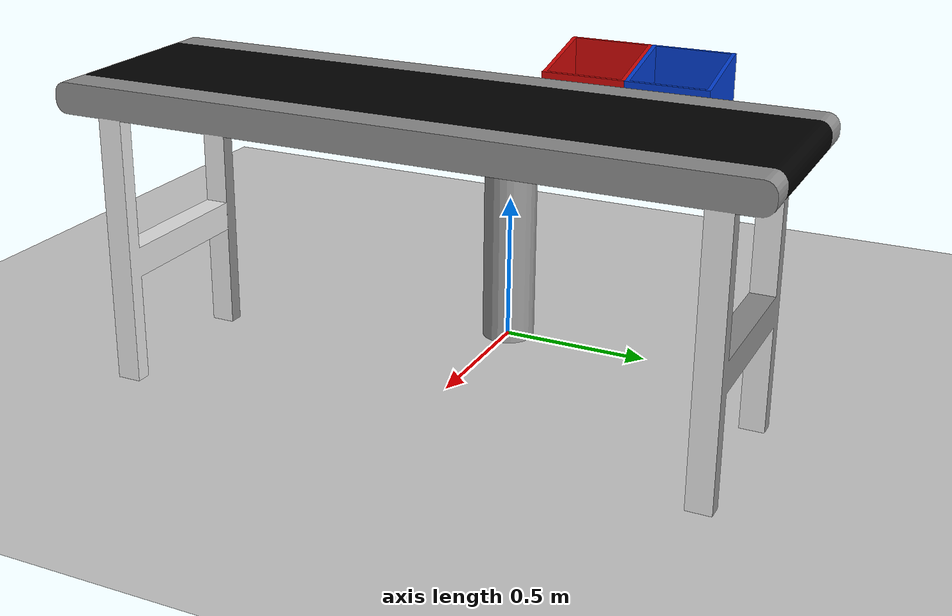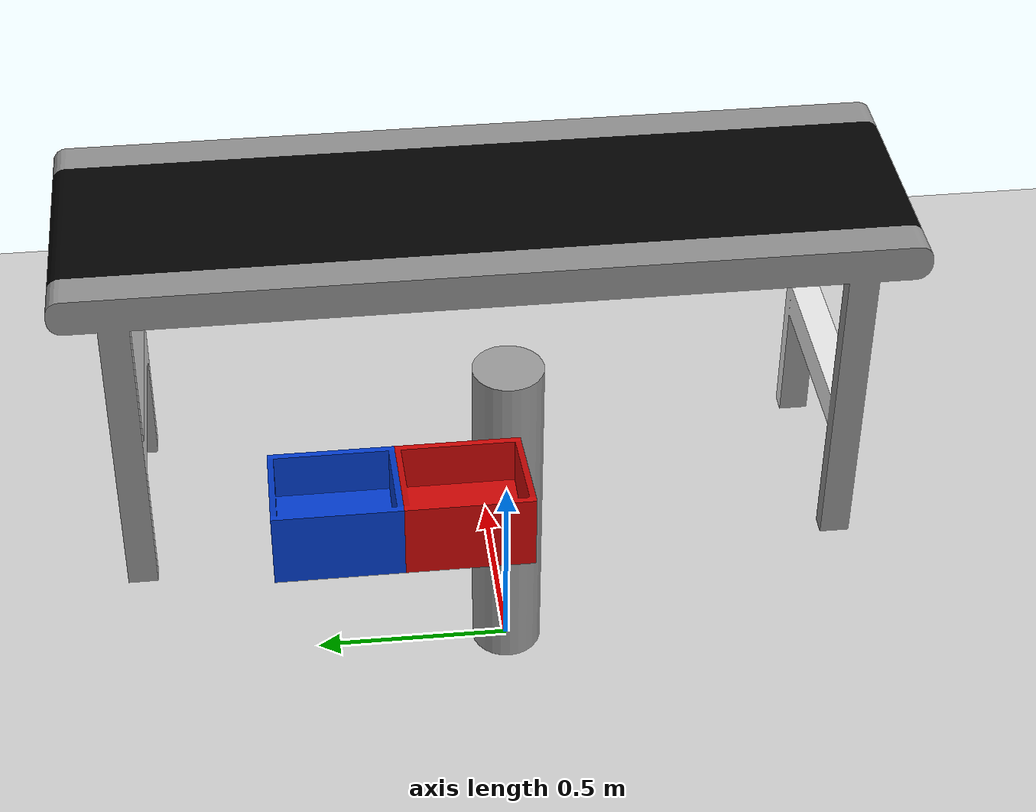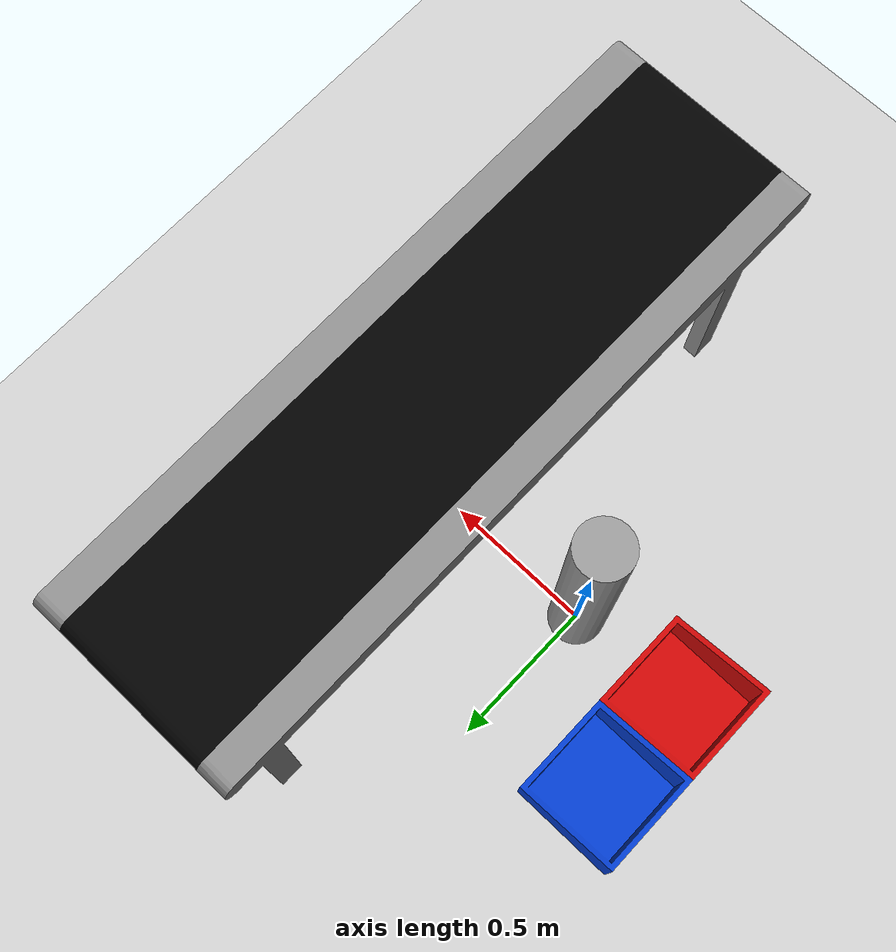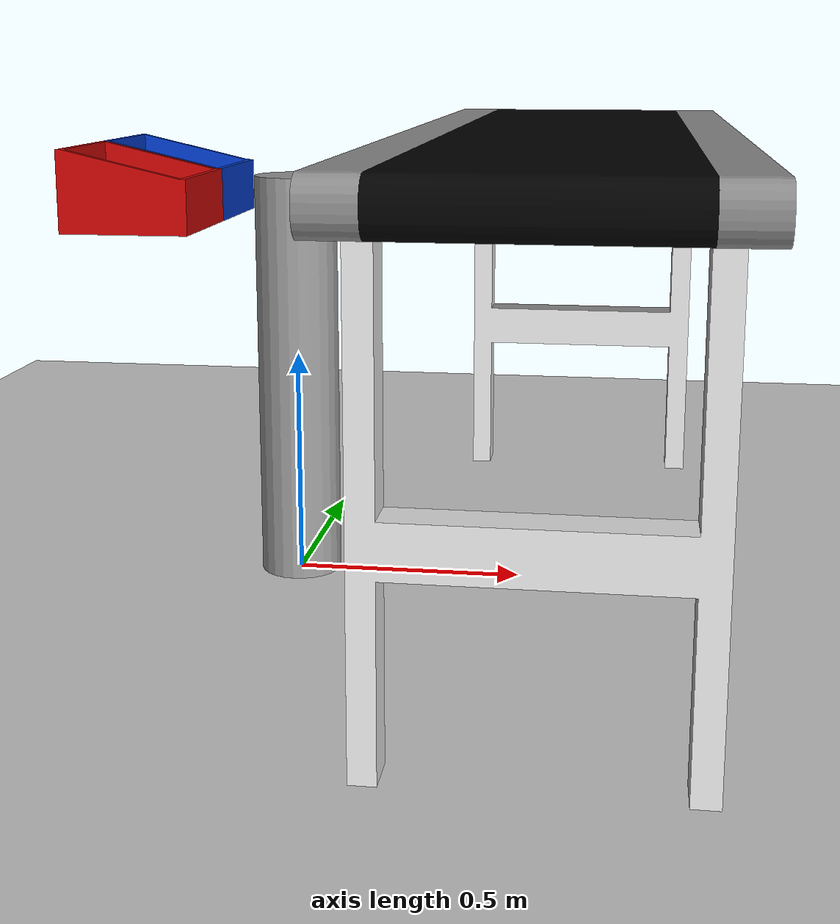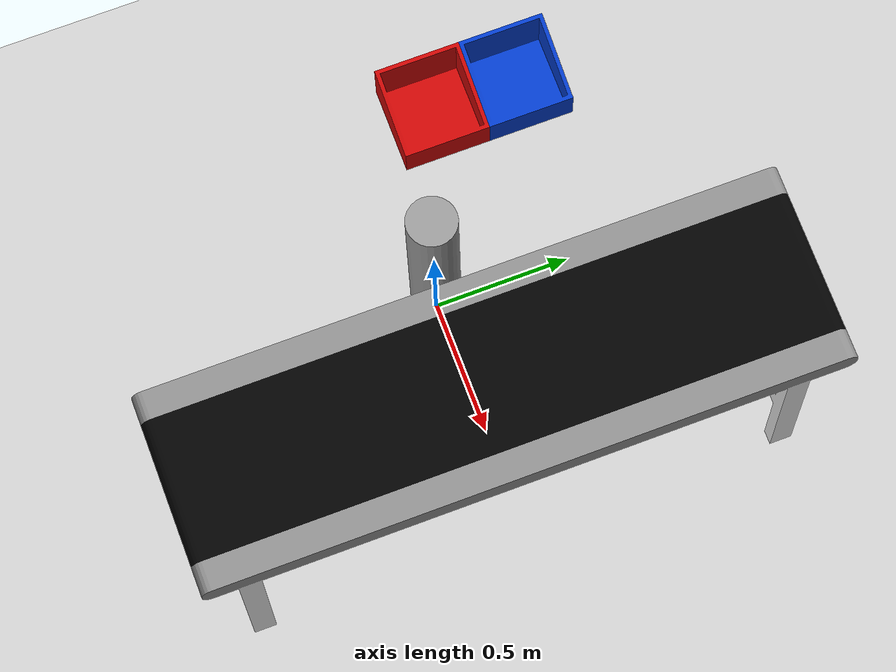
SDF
<sdf version="1.6">
 <world name="default">
  <model name="ground_plane">
   <static>1</static>
   <link name="link">
    <collision name="collision">
     <geometry><plane><normal>0 0 1</normal><size>100 100</size></plane></geometry>
     <surface>
      <contact><collide_bitmask>65535</collide_bitmask></contact>
      <friction><ode><mu>100</mu><mu2>50</mu2></ode></friction>
     </surface>
    </collision>
    <visual name="visual">
     <cast_shadows>0</cast_shadows>
     <geometry><plane><normal>0 0 1</normal><size>100 100</size></plane></geometry>
     <material>
      <script><uri>file://media/materials/scripts/gazebo.material</uri><name>Gazebo/Grey</name></script>
     </material>
    </visual>
   </link>
  </model>
  <model name="conveyor">
   <link name="link">
    <inertial>
     <mass>1</mass>
     <inertia><ixx>1</ixx><ixy>0</ixy><ixz>0</ixz><iyy>1</iyy><iyz>0</iyz><izz>1</izz></inertia>
    </inertial>
    <visual name="visual">
     <pose>0 0 0.95 0 -0 0</pose>
     <geometry><mesh><scale>0.45 0.35 0.5</scale><uri>model://conveyor/meshes/conveyor.dae</uri></mesh></geometry>
    </visual>
    <collision name="collision_0">
     <pose>0 0 0.95 0 -0 0</pose>
     <geometry><box><size>2.4 0.8 0.1</size></box></geometry>
     <surface>
      <friction>
       <ode><mu>1</mu><mu2>1</mu2><fdir1>0 0 0</fdir1><slip1>0</slip1><slip2>0</slip2></ode>
       <torsional>
        <coefficient>1</coefficient>
        <patch_radius>0</patch_radius>
        <surface_radius>0</surface_radius>
        <use_patch_radius>1</use_patch_radius>
        <ode><slip>0</slip></ode>
       </torsional>
      </friction>
      <bounce><restitution_coefficient>0</restitution_coefficient><threshold>1e+06</threshold></bounce>
      <contact>
       <collide_without_contact>0</collide_without_contact>
       <collide_without_contact_bitmask>1</collide_without_contact_bitmask>
       <collide_bitmask>1</collide_bitmask>
       <ode>
        <soft_cfm>0</soft_cfm>
        <soft_erp>0.2</soft_erp>
        <kp>1e+13</kp>
        <kd>1</kd>
        <max_vel>0.01</max_vel>
        <min_depth>0</min_depth>
       </ode>
       <bullet>
        <split_impulse>1</split_impulse>
        <split_impulse_penetration_threshold>-0.01</split_impulse_penetration_threshold>
        <soft_cfm>0</soft_cfm>
        <soft_erp>0.2</soft_erp>
        <kp>1e+13</kp>
        <kd>1</kd>
       </bullet>
      </contact>
     </surface>
    </collision>
   </link>
   <static>1</static>
   <pose>0.6 0 0 0 -0 1.57</pose>
  </model>
  <model name="robotbase">
   <static>1</static>
   <link name="link">
    <inertial>
     <mass>1</mass>
     <inertia><ixx>0.145833</ixx><ixy>0</ixy><ixz>0</ixz><iyy>0.145833</iyy><iyz>0</iyz><izz>0.125</izz></inertia>
    </inertial>
    <pose>0 0 0.45 0 -0 0</pose>
    <visual name="visual">
     <geometry><cylinder><radius>0.09</radius><length>0.9</length></cylinder></geometry>
     <material>
      <script><name>Gazebo/Grey</name><uri>file://media/materials/scripts/gazebo.material</uri></script>
      <shader type="pixel"><normal_map>__default__</normal_map></shader>
      <ambient>0.3 0.3 0.3 1</ambient>
      <diffuse>0.7 0.7 0.7 1</diffuse>
      <specular>0.01 0.01 0.01 1</specular>
      <emissive>0 0 0 1</emissive>
     </material>
    </visual>
    <collision name="collision">
     <geometry><cylinder><radius>0.09</radius><length>0.9</length></cylinder></geometry>
     <surface>
      <friction>
       <ode><mu>1</mu><mu2>1</mu2><fdir1>0 0 0</fdir1><slip1>0</slip1><slip2>0</slip2></ode>
       <torsional>
        <coefficient>1</coefficient>
        <patch_radius>0</patch_radius>
        <surface_radius>0</surface_radius>
        <use_patch_radius>1</use_patch_radius>
        <ode><slip>0</slip></ode>
       </torsional>
      </friction>
      <bounce><restitution_coefficient>0</restitution_coefficient><threshold>1e+06</threshold></bounce>
      <contact>
       <collide_without_contact>0</collide_without_contact>
       <collide_without_contact_bitmask>1</collide_without_contact_bitmask>
       <collide_bitmask>1</collide_bitmask>
       <ode>
        <soft_cfm>0</soft_cfm>
        <soft_erp>0.2</soft_erp>
        <kp>1e+13</kp>
        <kd>1</kd>
        <max_vel>0.01</max_vel>
        <min_depth>0</min_depth>
       </ode>
       <bullet>
        <split_impulse>1</split_impulse>
        <split_impulse_penetration_threshold>-0.01</split_impulse_penetration_threshold>
        <soft_cfm>0</soft_cfm>
        <soft_erp>0.2</soft_erp>
        <kp>1e+13</kp>
        <kd>1</kd>
       </bullet>
      </contact>
     </surface>
    </collision>
   </link>
   <static>0</static>
  </model>
  <model name="red_target">
   <static>1</static>
   <link name="link">
    <inertial>
     <mass>1</mass>
     <inertia><ixx>1</ixx><ixy>0</ixy><ixz>0</ixz><iyy>1</iyy><iyz>0</iyz><izz>1</izz></inertia>
    </inertial>
    <visual name="visual">
     <pose>0 0 0.01 0 -0 0</pose>
     <geometry>
      <mesh><scale>0.5 0.5 0.5</scale><uri>model://red_target/meshes/red_target.dae</uri></mesh>
     </geometry>
    </visual>
    <collision name="front_wall">
     <pose>0.144 0 0 0 -0 0</pose>
     <geometry><box><size>0.012 0.3 0.24</size></box></geometry>
     <surface>
      <friction>
       <ode><mu>1</mu><mu2>1</mu2><fdir1>0 0 0</fdir1><slip1>0</slip1><slip2>0</slip2></ode>
       <torsional>
        <coefficient>1</coefficient>
        <patch_radius>0</patch_radius>
        <surface_radius>0</surface_radius>
        <use_patch_radius>1</use_patch_radius>
        <ode><slip>0</slip></ode>
       </torsional>
      </friction>
      <bounce><restitution_coefficient>0</restitution_coefficient><threshold>1e+06</threshold></bounce>
      <contact>
       <collide_without_contact>0</collide_without_contact>
       <collide_without_contact_bitmask>1</collide_without_contact_bitmask>
       <collide_bitmask>1</collide_bitmask>
       <ode>
        <soft_cfm>0</soft_cfm>
        <soft_erp>0.2</soft_erp>
        <kp>1e+13</kp>
        <kd>1</kd>
        <max_vel>0.01</max_vel>
        <min_depth>0</min_depth>
       </ode>
       <bullet>
        <split_impulse>1</split_impulse>
        <split_impulse_penetration_threshold>-0.01</split_impulse_penetration_threshold>
        <soft_cfm>0</soft_cfm>
        <soft_erp>0.2</soft_erp>
        <kp>1e+13</kp>
        <kd>1</kd>
       </bullet>
      </contact>
     </surface>
    </collision>
    <collision name="right_wall">
     <pose>0 -0.144 0 0 -0 0</pose>
     <geometry><box><size>0.3 0.012 0.36</size></box></geometry>
     <surface>
      <friction>
       <ode><mu>1</mu><mu2>1</mu2><fdir1>0 0 0</fdir1><slip1>0</slip1><slip2>0</slip2></ode>
       <torsional>
        <coefficient>1</coefficient>
        <patch_radius>0</patch_radius>
        <surface_radius>0</surface_radius>
        <use_patch_radius>1</use_patch_radius>
        <ode><slip>0</slip></ode>
       </torsional>
      </friction>
      <bounce><restitution_coefficient>0</restitution_coefficient><threshold>1e+06</threshold></bounce>
      <contact>
       <collide_without_contact>0</collide_without_contact>
       <collide_without_contact_bitmask>1</collide_without_contact_bitmask>
       <collide_bitmask>1</collide_bitmask>
       <ode>
        <soft_cfm>0</soft_cfm>
        <soft_erp>0.2</soft_erp>
        <kp>1e+13</kp>
        <kd>1</kd>
        <max_vel>0.01</max_vel>
        <min_depth>0</min_depth>
       </ode>
       <bullet>
        <split_impulse>1</split_impulse>
        <split_impulse_penetration_threshold>-0.01</split_impulse_penetration_threshold>
        <soft_cfm>0</soft_cfm>
        <soft_erp>0.2</soft_erp>
        <kp>1e+13</kp>
        <kd>1</kd>
       </bullet>
      </contact>
     </surface>
    </collision>
    <collision name="bottom">
     <geometry><box><size>0.3 0.3 0.025</size></box></geometry>
     <surface>
      <friction>
       <ode><mu>1</mu><mu2>1</mu2><fdir1>0 0 0</fdir1><slip1>0</slip1><slip2>0</slip2></ode>
       <torsional>
        <coefficient>1</coefficient>
        <patch_radius>0</patch_radius>
        <surface_radius>0</surface_radius>
        <use_patch_radius>1</use_patch_radius>
        <ode><slip>0</slip></ode>
       </torsional>
      </friction>
      <bounce><restitution_coefficient>0</restitution_coefficient><threshold>1e+06</threshold></bounce>
      <contact>
       <collide_without_contact>0</collide_without_contact>
       <collide_without_contact_bitmask>1</collide_without_contact_bitmask>
       <collide_bitmask>1</collide_bitmask>
       <ode>
        <soft_cfm>0</soft_cfm>
        <soft_erp>0.2</soft_erp>
        <kp>1e+13</kp>
        <kd>1</kd>
        <max_vel>0.01</max_vel>
        <min_depth>0</min_depth>
       </ode>
       <bullet>
        <split_impulse>1</split_impulse>
        <split_impulse_penetration_threshold>-0.01</split_impulse_penetration_threshold>
        <soft_cfm>0</soft_cfm>
        <soft_erp>0.2</soft_erp>
        <kp>1e+13</kp>
        <kd>1</kd>
       </bullet>
      </contact>
     </surface>
    </collision>
    <collision name="left_wall">
     <pose>0 0.144 0 0 -0 0</pose>
     <geometry><box><size>0.3 0.012 0.39</size></box></geometry>
     <surface>
      <friction>
       <ode><mu>1</mu><mu2>1</mu2><fdir1>0 0 0</fdir1><slip1>0</slip1><slip2>0</slip2></ode>
       <torsional>
        <coefficient>1</coefficient>
        <patch_radius>0</patch_radius>
        <surface_radius>0</surface_radius>
        <use_patch_radius>1</use_patch_radius>
        <ode><slip>0</slip></ode>
       </torsional>
      </friction>
      <bounce><restitution_coefficient>0</restitution_coefficient><threshold>1e+06</threshold></bounce>
      <contact>
       <collide_without_contact>0</collide_without_contact>
       <collide_without_contact_bitmask>1</collide_without_contact_bitmask>
       <collide_bitmask>1</collide_bitmask>
       <ode>
        <soft_cfm>0</soft_cfm>
        <soft_erp>0.2</soft_erp>
        <kp>1e+13</kp>
        <kd>1</kd>
        <max_vel>0.01</max_vel>
        <min_depth>0</min_depth>
       </ode>
       <bullet>
        <split_impulse>1</split_impulse>
        <split_impulse_penetration_threshold>-0.01</split_impulse_penetration_threshold>
        <soft_cfm>0</soft_cfm>
        <soft_erp>0.2</soft_erp>
        <kp>1e+13</kp>
        <kd>1</kd>
       </bullet>
      </contact>
     </surface>
    </collision>
    <collision name="back_wall">
     <pose>-0.144 0 0 0 -0 0</pose>
     <geometry><box><size>0.012 0.3 0.39</size></box></geometry>
     <surface>
      <friction>
       <ode><mu>1</mu><mu2>1</mu2><fdir1>0 0 0</fdir1><slip1>0</slip1><slip2>0</slip2></ode>
       <torsional>
        <coefficient>1</coefficient>
        <patch_radius>0</patch_radius>
        <surface_radius>0</surface_radius>
        <use_patch_radius>1</use_patch_radius>
        <ode><slip>0</slip></ode>
       </torsional>
      </friction>
      <bounce><restitution_coefficient>0</restitution_coefficient><threshold>1e+06</threshold></bounce>
      <contact>
       <collide_without_contact>0</collide_without_contact>
       <collide_without_contact_bitmask>1</collide_without_contact_bitmask>
       <collide_bitmask>1</collide_bitmask>
       <ode>
        <soft_cfm>0</soft_cfm>
        <soft_erp>0.2</soft_erp>
        <kp>1e+13</kp>
        <kd>1</kd>
        <max_vel>0.01</max_vel>
        <min_depth>0</min_depth>
       </ode>
       <bullet>
        <split_impulse>1</split_impulse>
        <split_impulse_penetration_threshold>-0.01</split_impulse_penetration_threshold>
        <soft_cfm>0</soft_cfm>
        <soft_erp>0.2</soft_erp>
        <kp>1e+13</kp>
        <kd>1</kd>
       </bullet>
      </contact>
     </surface>
    </collision>
   </link>
   <pose>-0.4 0.15 0.755 0 -0 0</pose>
  </model>
  <model name="blue_target">
   <static>1</static>
   <link name="link">
    <inertial>
     <mass>1</mass>
     <inertia><ixx>1</ixx><ixy>0</ixy><ixz>0</ixz><iyy>1</iyy><iyz>0</iyz><izz>1</izz></inertia>
    </inertial>
    <visual name="visual">
     <pose>0 0 0.01 0 -0 0</pose>
     <geometry>
      <mesh><scale>0.5 0.5 0.5</scale><uri>model://blue_target/meshes/blue_target.dae</uri></mesh>
     </geometry>
    </visual>
    <collision name="front_wall">
     <pose>0.144 0 0 0 -0 0</pose>
     <geometry><box><size>0.012 0.3 0.24</size></box></geometry>
     <surface>
      <friction>
       <ode><mu>1</mu><mu2>1</mu2><fdir1>0 0 0</fdir1><slip1>0</slip1><slip2>0</slip2></ode>
       <torsional>
        <coefficient>1</coefficient>
        <patch_radius>0</patch_radius>
        <surface_radius>0</surface_radius>
        <use_patch_radius>1</use_patch_radius>
        <ode><slip>0</slip></ode>
       </torsional>
      </friction>
      <bounce><restitution_coefficient>0</restitution_coefficient><threshold>1e+06</threshold></bounce>
      <contact>
       <collide_without_contact>0</collide_without_contact>
       <collide_without_contact_bitmask>1</collide_without_contact_bitmask>
       <collide_bitmask>1</collide_bitmask>
       <ode>
        <soft_cfm>0</soft_cfm>
        <soft_erp>0.2</soft_erp>
        <kp>1e+13</kp>
        <kd>1</kd>
        <max_vel>0.01</max_vel>
        <min_depth>0</min_depth>
       </ode>
       <bullet>
        <split_impulse>1</split_impulse>
        <split_impulse_penetration_threshold>-0.01</split_impulse_penetration_threshold>
        <soft_cfm>0</soft_cfm>
        <soft_erp>0.2</soft_erp>
        <kp>1e+13</kp>
        <kd>1</kd>
       </bullet>
      </contact>
     </surface>
    </collision>
    <collision name="right_wall">
     <pose>0 -0.144 0 0 -0 0</pose>
     <geometry><box><size>0.3 0.012 0.36</size></box></geometry>
     <surface>
      <friction>
       <ode><mu>1</mu><mu2>1</mu2><fdir1>0 0 0</fdir1><slip1>0</slip1><slip2>0</slip2></ode>
       <torsional>
        <coefficient>1</coefficient>
        <patch_radius>0</patch_radius>
        <surface_radius>0</surface_radius>
        <use_patch_radius>1</use_patch_radius>
        <ode><slip>0</slip></ode>
       </torsional>
      </friction>
      <bounce><restitution_coefficient>0</restitution_coefficient><threshold>1e+06</threshold></bounce>
      <contact>
       <collide_without_contact>0</collide_without_contact>
       <collide_without_contact_bitmask>1</collide_without_contact_bitmask>
       <collide_bitmask>1</collide_bitmask>
       <ode>
        <soft_cfm>0</soft_cfm>
        <soft_erp>0.2</soft_erp>
        <kp>1e+13</kp>
        <kd>1</kd>
        <max_vel>0.01</max_vel>
        <min_depth>0</min_depth>
       </ode>
       <bullet>
        <split_impulse>1</split_impulse>
        <split_impulse_penetration_threshold>-0.01</split_impulse_penetration_threshold>
        <soft_cfm>0</soft_cfm>
        <soft_erp>0.2</soft_erp>
        <kp>1e+13</kp>
        <kd>1</kd>
       </bullet>
      </contact>
     </surface>
    </collision>
    <collision name="bottom">
     <geometry><box><size>0.3 0.3 0.025</size></box></geometry>
     <surface>
      <friction>
       <ode><mu>1</mu><mu2>1</mu2><fdir1>0 0 0</fdir1><slip1>0</slip1><slip2>0</slip2></ode>
       <torsional>
        <coefficient>1</coefficient>
        <patch_radius>0</patch_radius>
        <surface_radius>0</surface_radius>
        <use_patch_radius>1</use_patch_radius>
        <ode><slip>0</slip></ode>
       </torsional>
      </friction>
      <bounce><restitution_coefficient>0</restitution_coefficient><threshold>1e+06</threshold></bounce>
      <contact>
       <collide_without_contact>0</collide_without_contact>
       <collide_without_contact_bitmask>1</collide_without_contact_bitmask>
       <collide_bitmask>1</collide_bitmask>
       <ode>
        <soft_cfm>0</soft_cfm>
        <soft_erp>0.2</soft_erp>
        <kp>1e+13</kp>
        <kd>1</kd>
        <max_vel>0.01</max_vel>
        <min_depth>0</min_depth>
       </ode>
       <bullet>
        <split_impulse>1</split_impulse>
        <split_impulse_penetration_threshold>-0.01</split_impulse_penetration_threshold>
        <soft_cfm>0</soft_cfm>
        <soft_erp>0.2</soft_erp>
        <kp>1e+13</kp>
        <kd>1</kd>
       </bullet>
      </contact>
     </surface>
    </collision>
    <collision name="left_wall">
     <pose>0 0.144 0 0 -0 0</pose>
     <geometry><box><size>0.3 0.012 0.39</size></box></geometry>
     <surface>
      <friction>
       <ode><mu>1</mu><mu2>1</mu2><fdir1>0 0 0</fdir1><slip1>0</slip1><slip2>0</slip2></ode>
       <torsional>
        <coefficient>1</coefficient>
        <patch_radius>0</patch_radius>
        <surface_radius>0</surface_radius>
        <use_patch_radius>1</use_patch_radius>
        <ode><slip>0</slip></ode>
       </torsional>
      </friction>
      <bounce><restitution_coefficient>0</restitution_coefficient><threshold>1e+06</threshold></bounce>
      <contact>
       <collide_without_contact>0</collide_without_contact>
       <collide_without_contact_bitmask>1</collide_without_contact_bitmask>
       <collide_bitmask>1</collide_bitmask>
       <ode>
        <soft_cfm>0</soft_cfm>
        <soft_erp>0.2</soft_erp>
        <kp>1e+13</kp>
        <kd>1</kd>
        <max_vel>0.01</max_vel>
        <min_depth>0</min_depth>
       </ode>
       <bullet>
        <split_impulse>1</split_impulse>
        <split_impulse_penetration_threshold>-0.01</split_impulse_penetration_threshold>
        <soft_cfm>0</soft_cfm>
        <soft_erp>0.2</soft_erp>
        <kp>1e+13</kp>
        <kd>1</kd>
       </bullet>
      </contact>
     </surface>
    </collision>
    <collision name="back_wall">
     <pose>-0.144 0 0 0 -0 0</pose>
     <geometry><box><size>0.012 0.3 0.39</size></box></geometry>
     <surface>
      <friction>
       <ode><mu>1</mu><mu2>1</mu2><fdir1>0 0 0</fdir1><slip1>0</slip1><slip2>0</slip2></ode>
       <torsional>
        <coefficient>1</coefficient>
        <patch_radius>0</patch_radius>
        <surface_radius>0</surface_radius>
        <use_patch_radius>1</use_patch_radius>
        <ode><slip>0</slip></ode>
       </torsional>
      </friction>
      <bounce><restitution_coefficient>0</restitution_coefficient><threshold>1e+06</threshold></bounce>
      <contact>
       <collide_without_contact>0</collide_without_contact>
       <collide_without_contact_bitmask>1</collide_without_contact_bitmask>
       <collide_bitmask>1</collide_bitmask>
       <ode>
        <soft_cfm>0</soft_cfm>
        <soft_erp>0.2</soft_erp>
        <kp>1e+13</kp>
        <kd>1</kd>
        <max_vel>0.01</max_vel>
        <min_depth>0</min_depth>
       </ode>
       <bullet>
        <split_impulse>1</split_impulse>
        <split_impulse_penetration_threshold>-0.01</split_impulse_penetration_threshold>
        <soft_cfm>0</soft_cfm>
        <soft_erp>0.2</soft_erp>
        <kp>1e+13</kp>
        <kd>1</kd>
       </bullet>
      </contact>
     </surface>
    </collision>
   </link>
   <pose>-0.4 0.45 0.755 0 -0 0</pose>
  </model>
 </world>
</sdf>
